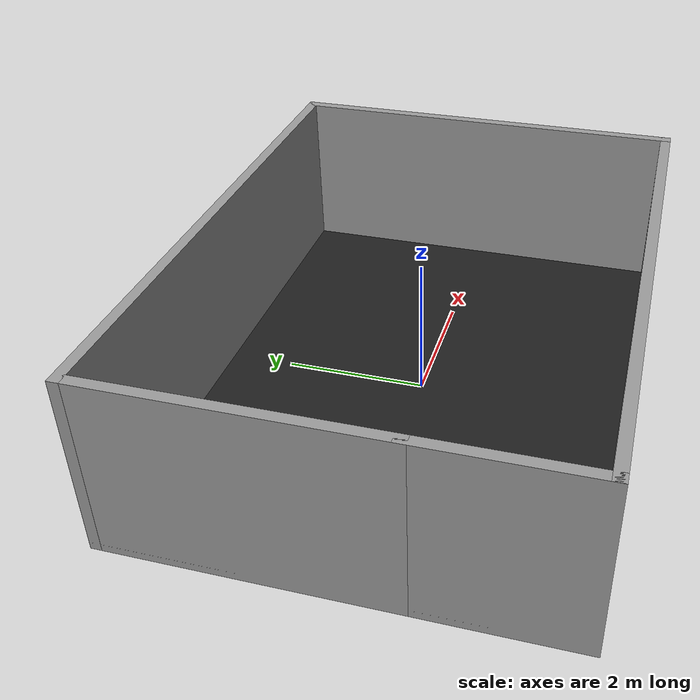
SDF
<?xml version='1.0'?>
<sdf version='1.7'>
  <model name='field'>
    <pose>0.0 0.0 0 0 0 0</pose>
    <link name="floor">
      <collision name="floor_collision">
        <geometry>
          <box>
            <size>8 6 0.001</size>
          </box>
        </geometry>
        <pose>0 0 0.1 0 0 0</pose> <!-- half the height to keep it at ground level -->
      </collision>
      <visual name="floor_visual">
        <geometry>
          <box>
            <size>8 6 0.001</size>
          </box>
        </geometry>
        <pose>0 0 0.1 0 0 0</pose>
        <material>
          <script>
            <uri>file://media/materials/scripts/gazebo.material</uri>
            <name>Gazebo/Black</name> <!-- You can change the color here -->
          </script>
        </material>
      </visual>
    </link>
    <link name='Wall_0'>
      <collision name='Wall_0_Collision'>
        <geometry>
          <box>
            <size>2.25 0.15 2.5</size>
          </box>
        </geometry>
        <pose>0 0 1.25 0 -0 0</pose>
      </collision>
      <visual name='Wall_0_Visual'>
        <pose>0 0 1.25 0 -0 0</pose>
        <geometry>
          <box>
            <size>2.25 0.15 2.5</size>
          </box>
        </geometry>
        <material>
          <script>
            <uri>file://media/materials/scripts/gazebo.material</uri>
            <name>Gazebo/Grey</name>
          </script>
          <ambient>0 0 0 1</ambient>
        </material>
        <meta>
          <layer>0</layer>
        </meta>
      </visual>
      <pose>-3.925 -1.875 0 0 -0 -1.5708</pose>
    </link>
    <link name='Wall_1'>
      <collision name='Wall_1_Collision'>
        <geometry>
          <box>
            <size>8 0.15 2.5</size>
          </box>
        </geometry>
        <pose>0 0 1.25 0 -0 0</pose>
      </collision>
      <visual name='Wall_1_Visual'>
        <pose>0 0 1.25 0 -0 0</pose>
        <geometry>
          <box>
            <size>8 0.15 2.5</size>
          </box>
        </geometry>
        <material>
          <script>
            <uri>file://media/materials/scripts/gazebo.material</uri>
            <name>Gazebo/Grey</name>
          </script>
          <ambient>0 0 0 1</ambient>
        </material>
        <meta>
          <layer>0</layer>
        </meta>
      </visual>
      <pose>0 -2.925 0 0 -0 0</pose>
    </link>
    <link name='Wall_2'>
      <collision name='Wall_2_Collision'>
        <geometry>
          <box>
            <size>6 0.15 2.5</size>
          </box>
        </geometry>
        <pose>0 0 1.25 0 -0 0</pose>
      </collision>
      <visual name='Wall_2_Visual'>
        <pose>0 0 1.25 0 -0 0</pose>
        <geometry>
          <box>
            <size>6 0.15 2.5</size>
          </box>
        </geometry>
        <material>
          <script>
            <uri>file://media/materials/scripts/gazebo.material</uri>
            <name>Gazebo/Grey</name>
          </script>
          <ambient>0 0 0 1</ambient>
        </material>
        <meta>
          <layer>0</layer>
        </meta>
      </visual>
      <pose>3.925 0 0 0 -0 1.5708</pose>
    </link>
    <link name='Wall_3'>
      <collision name='Wall_3_Collision'>
        <geometry>
          <box>
            <size>8 0.15 2.5</size>
          </box>
        </geometry>
        <pose>0 0 1.25 0 -0 0</pose>
      </collision>
      <visual name='Wall_3_Visual'>
        <pose>0 0 1.25 0 -0 0</pose>
        <geometry>
          <box>
            <size>8 0.15 2.5</size>
          </box>
        </geometry>
        <material>
          <script>
            <uri>file://media/materials/scripts/gazebo.material</uri>
            <name>Gazebo/Grey</name>
          </script>
          <ambient>0 0 0 1</ambient>
        </material>
        <meta>
          <layer>0</layer>
        </meta>
      </visual>
      <pose>0 2.925 0 0 -0 3.14159</pose>
    </link>
    <link name='Wall_4'>
      <collision name='Wall_4_Collision'>
        <geometry>
          <box>
            <size>3.9 0.15 2.5</size>
          </box>
        </geometry>
        <pose>0 0 1.25 0 -0 0</pose>
      </collision>
      <visual name='Wall_4_Visual'>
        <pose>0 0 1.25 0 -0 0</pose>
        <geometry>
          <box>
            <size>3.9 0.15 2.5</size>
          </box>
        </geometry>
        <material>
          <script>
            <uri>file://media/materials/scripts/gazebo.material</uri>
            <name>Gazebo/Grey</name>
          </script>
          <ambient>0 0 0 1</ambient>
        </material>
        <meta>
          <layer>0</layer>
        </meta>
      </visual>
      <pose>-3.925 1.05 0 0 -0 -1.5708</pose>
    </link>
    <static>1</static>
  </model>

</sdf>
